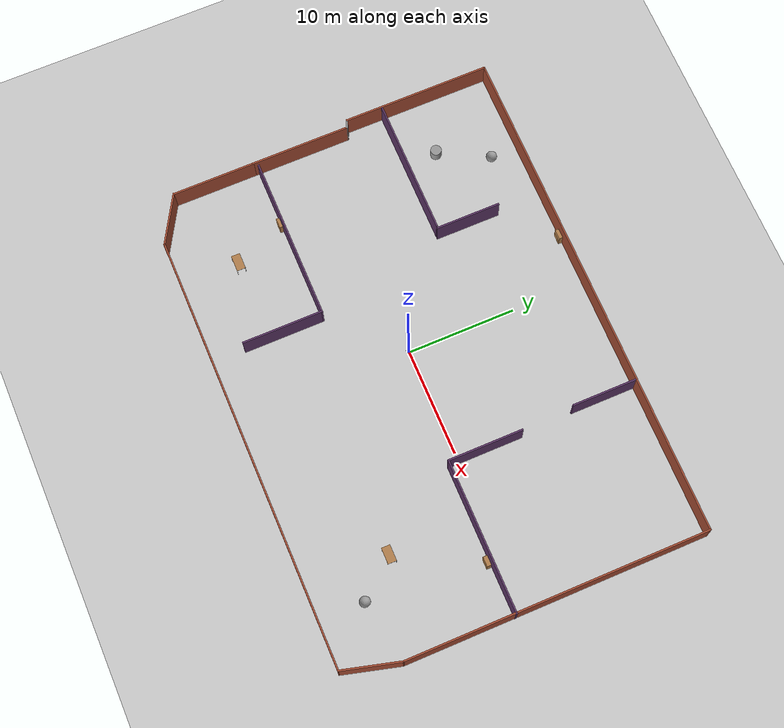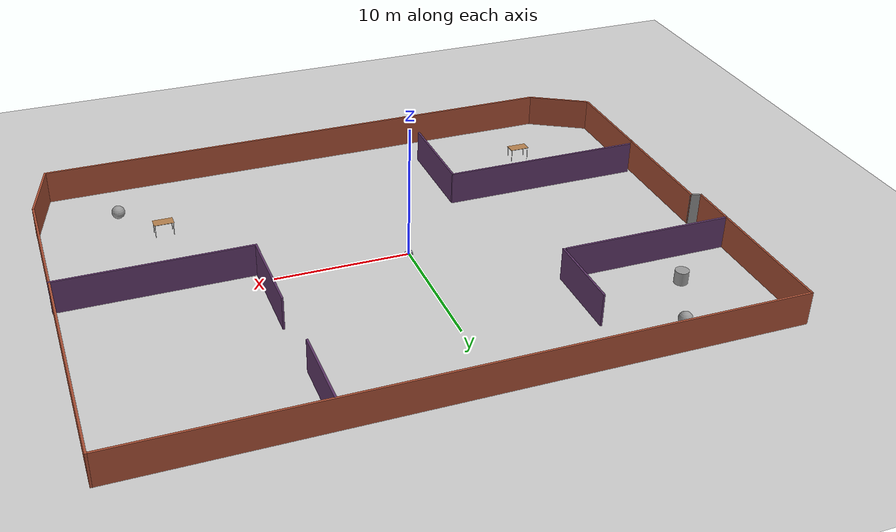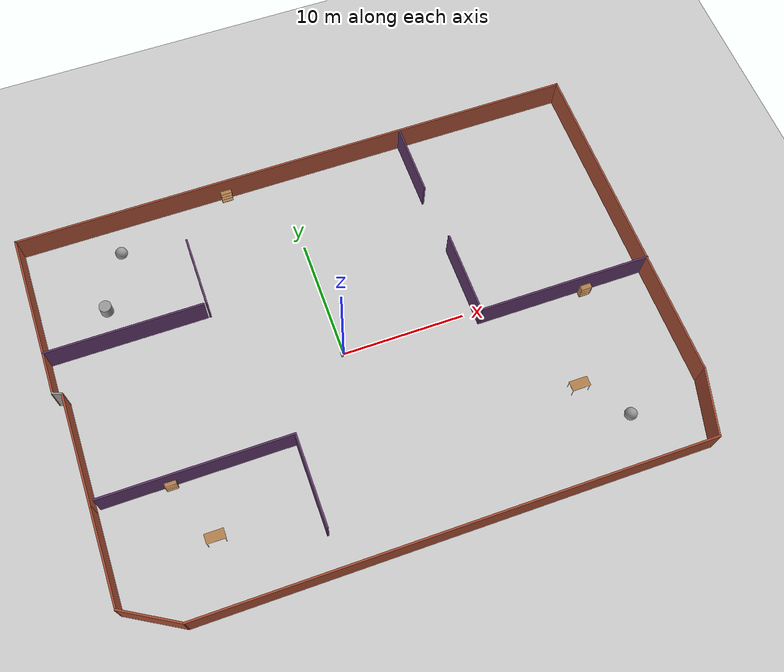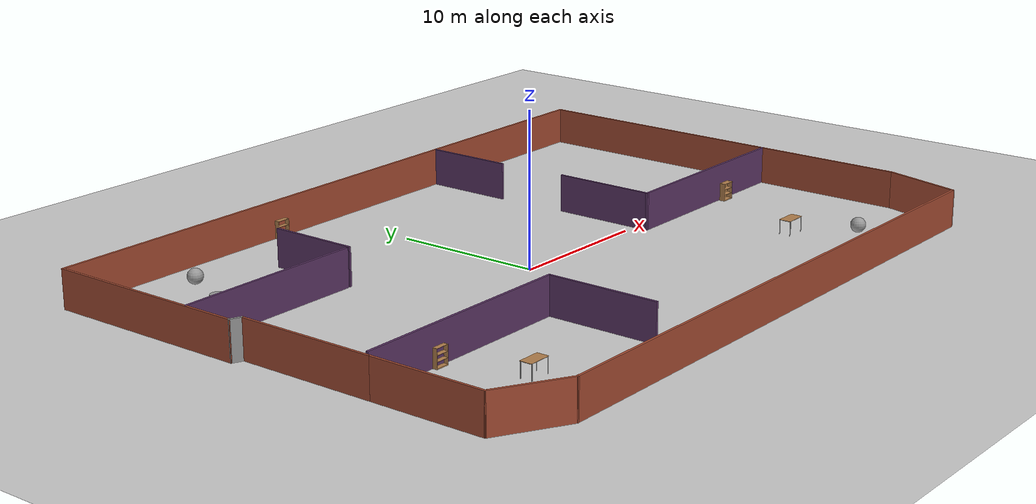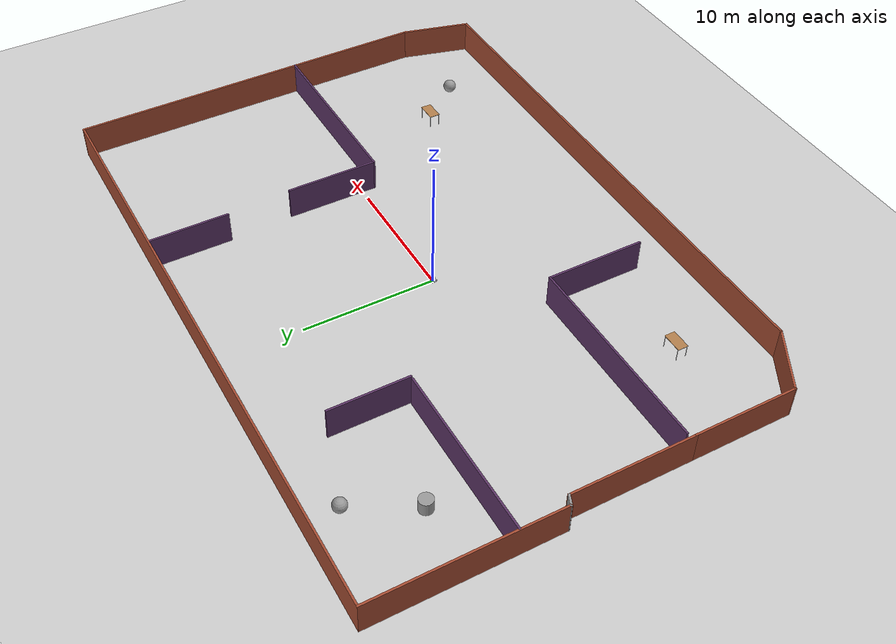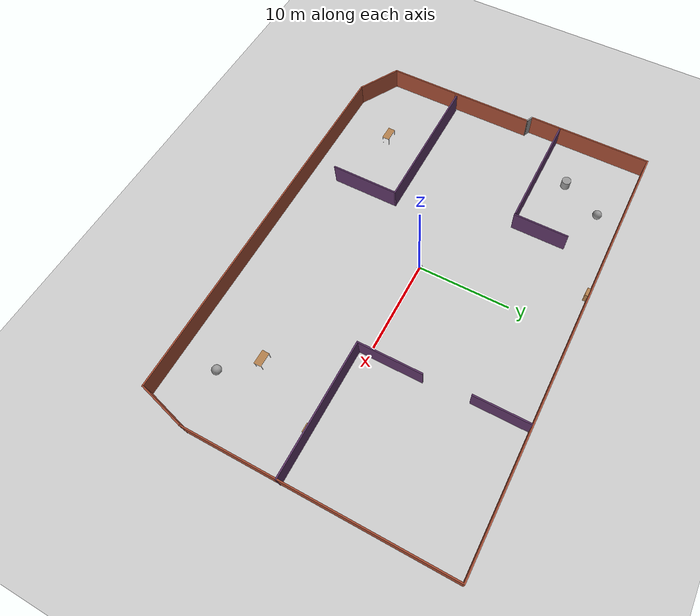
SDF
<sdf version="1.7">
 <world name="default">
  <light name="sun" type="directional">
   <pose>0 0 10 0 -0 0</pose>
   <diffuse>0.8 0.8 0.8 1</diffuse>
   <specular>0.2 0.2 0.2 1</specular>
   <attenuation>
    <range>1000</range>
    <constant>0.9</constant>
    <linear>0.01</linear>
    <quadratic>0.001</quadratic>
   </attenuation>
   <direction>-0.5 0.1 -0.9</direction>
   <spot><inner_angle>0</inner_angle><outer_angle>0</outer_angle><falloff>0</falloff></spot>
  </light>
  <model name="ground_plane">
   <static>1</static>
   <link name="link">
    <collision name="collision">
     <geometry><plane><normal>0 0 1</normal><size>100 100</size></plane></geometry>
     <surface>
      <contact><collide_bitmask>65535</collide_bitmask></contact>
      <friction><ode><mu>100</mu><mu2>50</mu2></ode></friction>
     </surface>
    </collision>
    <visual name="visual">
     <cast_shadows>0</cast_shadows>
     <geometry><plane><normal>0 0 1</normal><size>100 100</size></plane></geometry>
     <material>
      <script><uri>file://media/materials/scripts/gazebo.material</uri><name>Gazebo/Grey</name></script>
     </material>
    </visual>
   </link>
  </model>
  <gravity>0 0 -9.8</gravity>
  <magnetic_field>6e-06 2.3e-05 -4.2e-05</magnetic_field>
  <atmosphere type="adiabatic"/>
  <physics type="ode">
   <max_step_size>0.001</max_step_size>
   <real_time_factor>1</real_time_factor>
   <real_time_update_rate>1000</real_time_update_rate>
  </physics>
  <scene><ambient>0.4 0.4 0.4 1</ambient><background>0.7 0.7 0.7 1</background><shadows>1</shadows></scene>
  <spherical_coordinates>
   <surface_model>EARTH_WGS84</surface_model>
   <latitude_deg>0</latitude_deg>
   <longitude_deg>0</longitude_deg>
   <elevation>0</elevation>
   <heading_deg>0</heading_deg>
  </spherical_coordinates>
  <model name="rmp01_bot">
   <link name="base_link">
    <inertial>
     <pose>-0.010386 2.4e-05 0.120697 0 -0 0</pose>
     <mass>14.3585</mass>
     <inertia>
      <ixx>0.149241</ixx>
      <ixy>-1.58634e-05</ixy>
      <ixz>0.0173055</ixz>
      <iyy>0.348864</iyy>
      <iyz>-2.11879e-05</iyz>
      <izz>0.391853</izz>
     </inertia>
    </inertial>
    <collision name="base_link_collision">
     <geometry>
      <mesh>
       <scale>0.001 0.001 0.001</scale>
       <uri>/home/startech/catkin_ws/src/rmp01_bot_description/meshes/base_link.stl</uri>
      </mesh>
     </geometry>
     <surface><friction><ode><mu>0.2</mu><mu2>0.2</mu2></ode></friction></surface>
    </collision>
    <collision name="base_link_fixed_joint_lump__lidar_1_collision_1">
     <geometry>
      <mesh>
       <scale>0.001 0.001 0.001</scale>
       <uri>/home/startech/catkin_ws/src/rmp01_bot_description/meshes/lidar_1.stl</uri>
      </mesh>
     </geometry>
     <surface><friction><ode><mu>0.2</mu><mu2>0.2</mu2></ode></friction></surface>
    </collision>
    <visual name="base_link_visual">
     <geometry>
      <mesh>
       <scale>0.001 0.001 0.001</scale>
       <uri>/home/startech/catkin_ws/src/rmp01_bot_description/meshes/base_link.stl</uri>
      </mesh>
     </geometry>
     <material>
      <script><name>Gazebo/Silver</name><uri>file://media/materials/scripts/gazebo.material</uri></script>
     </material>
    </visual>
    <visual name="base_link_fixed_joint_lump__lidar_1_visual_1">
     <geometry>
      <mesh>
       <scale>0.001 0.001 0.001</scale>
       <uri>/home/startech/catkin_ws/src/rmp01_bot_description/meshes/lidar_1.stl</uri>
      </mesh>
     </geometry>
     <material>
      <script><name>Gazebo/Silver</name><uri>file://media/materials/scripts/gazebo.material</uri></script>
     </material>
    </visual>
    <sensor name="camera1" type="camera">
     <update_rate>30</update_rate>
     <camera name="head">
      <horizontal_fov>1.39626</horizontal_fov>
      <image><width>800</width><height>800</height><format>R8G8B8</format></image>
      <clip><near>0.02</near><far>300</far></clip>
      <noise><type>gaussian</type><mean>0</mean><stddev>0.007</stddev></noise>
     </camera>
     <plugin name="camera_controller" filename="libgazebo_ros_camera.so">
      <alwaysOn>1</alwaysOn>
      <updateRate>0.0</updateRate>
      <cameraName>rrbot/camera1</cameraName>
      <imageTopicName>image_raw</imageTopicName>
      <cameraInfoTopicName>camera_info</cameraInfoTopicName>
      <frameName>camera_link</frameName>
      <hackBaseline>0.07</hackBaseline>
      <distortionK1>0.0</distortionK1>
      <distortionK2>0.0</distortionK2>
      <distortionK3>0.0</distortionK3>
      <distortionT1>0.0</distortionT1>
      <distortionT2>0.0</distortionT2>
      <robotNamespace>/</robotNamespace>
     </plugin>
     <pose>0.1 0 0.23 0 -0 0</pose>
    </sensor>
    <self_collide>1</self_collide>
    <sensor name="head_hokuyo_sensor" type="ray">
     <visualize>0</visualize>
     <update_rate>40</update_rate>
     <ray>
      <scan>
       <horizontal>
        <samples>720</samples>
        <resolution>1</resolution>
        <min_angle>-3.14</min_angle>
        <max_angle>3.14</max_angle>
       </horizontal>
       <vertical><samples>1</samples><min_angle>0</min_angle><max_angle>0</max_angle></vertical>
      </scan>
      <range><min>0.1</min><max>30</max><resolution>0.01</resolution></range>
      <noise><type>gaussian</type><mean>0</mean><stddev>0.01</stddev></noise>
     </ray>
     <plugin name="gazebo_ros_head_hokuyo_controller" filename="libgazebo_ros_laser.so">
      <topicName>/scan</topicName>
      <frameName>lidar_1</frameName>
      <robotNamespace>/</robotNamespace>
     </plugin>
     <pose>-0.1 0 0.23 0 -0 0</pose>
    </sensor>
   </link>
   <joint name="back_left_wheel_joint" type="revolute">
    <pose relative_to="base_link">-0.16 0.17 0.08 0 -0 0</pose>
    <parent>base_link</parent>
    <child>back_left_wheel_1</child>
    <axis>
     <xyz>0 1 0</xyz>
     <limit><lower>-1e+16</lower><upper>1e+16</upper></limit>
     <dynamics><spring_reference>0</spring_reference><spring_stiffness>0</spring_stiffness></dynamics>
    </axis>
   </joint>
   <link name="back_left_wheel_1">
    <pose relative_to="back_left_wheel_joint">0 0 0 0 -0 0</pose>
    <inertial>
     <pose>-0 0.025 0 0 -0 0</pose>
     <mass>0.897123</mass>
     <inertia>
      <ixx>0.001664</ixx>
      <ixy>0</ixy>
      <ixz>0</ixz>
      <iyy>0.002957</iyy>
      <iyz>0</iyz>
      <izz>0.001664</izz>
     </inertia>
    </inertial>
    <collision name="back_left_wheel_1_collision">
     <pose>0.16 -0.17 -0.08 0 -0 0</pose>
     <geometry>
      <mesh>
       <scale>0.001 0.001 0.001</scale>
       <uri>/home/startech/catkin_ws/src/rmp01_bot_description/meshes/back_left_wheel_1.stl</uri>
      </mesh>
     </geometry>
     <surface><friction><ode><mu>0.2</mu><mu2>0.2</mu2></ode></friction></surface>
    </collision>
    <visual name="back_left_wheel_1_visual">
     <pose>0.16 -0.17 -0.08 0 -0 0</pose>
     <geometry>
      <mesh>
       <scale>0.001 0.001 0.001</scale>
       <uri>/home/startech/catkin_ws/src/rmp01_bot_description/meshes/back_left_wheel_1.stl</uri>
      </mesh>
     </geometry>
     <material>
      <script><name>Gazebo/Silver</name><uri>file://media/materials/scripts/gazebo.material</uri></script>
     </material>
    </visual>
    <self_collide>1</self_collide>
   </link>
   <joint name="back_right_wheel_joint" type="revolute">
    <pose relative_to="base_link">-0.16 -0.17 0.08 0 -0 0</pose>
    <parent>base_link</parent>
    <child>back_right_wheel_1</child>
    <axis>
     <xyz>0 -1 0</xyz>
     <limit><lower>-1e+16</lower><upper>1e+16</upper></limit>
     <dynamics><spring_reference>0</spring_reference><spring_stiffness>0</spring_stiffness></dynamics>
    </axis>
   </joint>
   <link name="back_right_wheel_1">
    <pose relative_to="back_right_wheel_joint">0 0 0 0 -0 0</pose>
    <inertial>
     <pose>-0 -0.025 0 0 -0 0</pose>
     <mass>0.897123</mass>
     <inertia>
      <ixx>0.001664</ixx>
      <ixy>0</ixy>
      <ixz>0</ixz>
      <iyy>0.002957</iyy>
      <iyz>0</iyz>
      <izz>0.001664</izz>
     </inertia>
    </inertial>
    <collision name="back_right_wheel_1_collision">
     <pose>0.16 0.17 -0.08 0 -0 0</pose>
     <geometry>
      <mesh>
       <scale>0.001 0.001 0.001</scale>
       <uri>/home/startech/catkin_ws/src/rmp01_bot_description/meshes/back_right_wheel_1.stl</uri>
      </mesh>
     </geometry>
     <surface><friction><ode><mu>0.2</mu><mu2>0.2</mu2></ode></friction></surface>
    </collision>
    <visual name="back_right_wheel_1_visual">
     <pose>0.16 0.17 -0.08 0 -0 0</pose>
     <geometry>
      <mesh>
       <scale>0.001 0.001 0.001</scale>
       <uri>/home/startech/catkin_ws/src/rmp01_bot_description/meshes/back_right_wheel_1.stl</uri>
      </mesh>
     </geometry>
     <material>
      <script><name>Gazebo/Silver</name><uri>file://media/materials/scripts/gazebo.material</uri></script>
     </material>
    </visual>
    <self_collide>1</self_collide>
   </link>
   <joint name="front_left_wheel_joint" type="revolute">
    <pose relative_to="base_link">0.16 0.17 0.08 0 -0 0</pose>
    <parent>base_link</parent>
    <child>front_left_wheel_1</child>
    <axis>
     <xyz>0 1 0</xyz>
     <limit><lower>-1e+16</lower><upper>1e+16</upper></limit>
     <dynamics><spring_reference>0</spring_reference><spring_stiffness>0</spring_stiffness></dynamics>
    </axis>
   </joint>
   <link name="front_left_wheel_1">
    <pose relative_to="front_left_wheel_joint">0 0 0 0 -0 0</pose>
    <inertial>
     <pose>0 0.025 0 0 -0 0</pose>
     <mass>0.897123</mass>
     <inertia>
      <ixx>0.001664</ixx>
      <ixy>0</ixy>
      <ixz>0</ixz>
      <iyy>0.002957</iyy>
      <iyz>0</iyz>
      <izz>0.001664</izz>
     </inertia>
    </inertial>
    <collision name="front_left_wheel_1_collision">
     <pose>-0.16 -0.17 -0.08 0 -0 0</pose>
     <geometry>
      <mesh>
       <scale>0.001 0.001 0.001</scale>
       <uri>/home/startech/catkin_ws/src/rmp01_bot_description/meshes/front_left_wheel_1.stl</uri>
      </mesh>
     </geometry>
     <surface><friction><ode><mu>0.2</mu><mu2>0.2</mu2></ode></friction></surface>
    </collision>
    <visual name="front_left_wheel_1_visual">
     <pose>-0.16 -0.17 -0.08 0 -0 0</pose>
     <geometry>
      <mesh>
       <scale>0.001 0.001 0.001</scale>
       <uri>/home/startech/catkin_ws/src/rmp01_bot_description/meshes/front_left_wheel_1.stl</uri>
      </mesh>
     </geometry>
     <material>
      <script><name>Gazebo/Silver</name><uri>file://media/materials/scripts/gazebo.material</uri></script>
     </material>
    </visual>
    <self_collide>1</self_collide>
   </link>
   <joint name="front_right_wheel_joint" type="revolute">
    <pose relative_to="base_link">0.16 -0.17 0.08 0 -0 0</pose>
    <parent>base_link</parent>
    <child>front_right_wheel_1</child>
    <axis>
     <xyz>0 -1 0</xyz>
     <limit><lower>-1e+16</lower><upper>1e+16</upper></limit>
     <dynamics><spring_reference>0</spring_reference><spring_stiffness>0</spring_stiffness></dynamics>
    </axis>
   </joint>
   <link name="front_right_wheel_1">
    <pose relative_to="front_right_wheel_joint">0 0 0 0 -0 0</pose>
    <inertial>
     <pose>0 -0.025 0 0 -0 0</pose>
     <mass>0.897123</mass>
     <inertia>
      <ixx>0.001664</ixx>
      <ixy>0</ixy>
      <ixz>0</ixz>
      <iyy>0.002957</iyy>
      <iyz>0</iyz>
      <izz>0.001664</izz>
     </inertia>
    </inertial>
    <collision name="front_right_wheel_1_collision">
     <pose>-0.16 0.17 -0.08 0 -0 0</pose>
     <geometry>
      <mesh>
       <scale>0.001 0.001 0.001</scale>
       <uri>/home/startech/catkin_ws/src/rmp01_bot_description/meshes/front_right_wheel_1.stl</uri>
      </mesh>
     </geometry>
     <surface><friction><ode><mu>0.2</mu><mu2>0.2</mu2></ode></friction></surface>
    </collision>
    <visual name="front_right_wheel_1_visual">
     <pose>-0.16 0.17 -0.08 0 -0 0</pose>
     <geometry>
      <mesh>
       <scale>0.001 0.001 0.001</scale>
       <uri>/home/startech/catkin_ws/src/rmp01_bot_description/meshes/front_right_wheel_1.stl</uri>
      </mesh>
     </geometry>
     <material>
      <script><name>Gazebo/Silver</name><uri>file://media/materials/scripts/gazebo.material</uri></script>
     </material>
    </visual>
    <self_collide>1</self_collide>
   </link>
   <plugin name="control" filename="libgazebo_ros_control.so"><robotNamespace>/</robotNamespace></plugin>
   <static>0</static>
   <plugin name="skid_steer_drive_controller" filename="libgazebo_ros_skid_steer_drive.so">
    <updateRate>100.0</updateRate>
    <robotNamespace>/</robotNamespace>
    <leftFrontJoint>front_left_wheel_joint</leftFrontJoint>
    <rightFrontJoint>front_right_wheel_joint</rightFrontJoint>
    <leftRearJoint>back_left_wheel_joint</leftRearJoint>
    <rightRearJoint>back_right_wheel_joint</rightRearJoint>
    <wheelSeparation>0.4</wheelSeparation>
    <wheelDiameter>0.215</wheelDiameter>
    <robotBaseFrame>base_link</robotBaseFrame>
    <torque>20</torque>
    <topicName>cmd_vel</topicName>
    <broadcastTF>1</broadcastTF>
   </plugin>
   <pose>-0.006529 -0.005775 -5.2e-05 -1e-06 0.000233 0.004419</pose>
  </model>
  <model name="big_world">
   <pose>1.56726 0.207996 0 0 -0 0</pose>
   <link name="Wall_1">
    <collision name="Wall_1_Collision">
     <geometry><box><size>9.25 0.15 2.5</size></box></geometry>
     <pose>0 0 1.25 0 -0 0</pose>
    </collision>
    <visual name="Wall_1_Visual">
     <pose>0 0 1.25 0 -0 0</pose>
     <geometry><box><size>9.25 0.15 2.5</size></box></geometry>
     <material>
      <script><uri>file://media/materials/scripts/gazebo.material</uri><name>Gazebo/Bricks</name></script>
      <ambient>1 1 1 1</ambient>
     </material>
     <meta><layer>0</layer></meta>
    </visual>
    <pose>-22.7662 -1.92013 0 0 -0 -1.5708</pose>
   </link>
   <link name="Wall_11">
    <collision name="Wall_11_Collision">
     <geometry><box><size>12.75 0.15 2.5</size></box></geometry>
     <pose>0 0 1.25 0 -0 0</pose>
    </collision>
    <visual name="Wall_11_Visual">
     <pose>0 0 1.25 0 -0 0</pose>
     <geometry><box><size>12.75 0.15 2.5</size></box></geometry>
     <material>
      <script><uri>file://media/materials/scripts/gazebo.material</uri><name>Gazebo/Grey</name></script>
      <ambient>0.360784 0.207843 0.4 1</ambient>
     </material>
     <meta><layer>0</layer></meta>
    </visual>
    <pose>-17.0789 6.34576 0 0 -0 0</pose>
   </link>
   <link name="Wall_14">
    <collision name="Wall_14_Collision">
     <geometry><box><size>6 0.15 2.5</size></box></geometry>
     <pose>0 0 1.25 0 -0 0</pose>
    </collision>
    <visual name="Wall_14_Visual">
     <pose>0 0 1.25 0 -0 0</pose>
     <geometry><box><size>6 0.15 2.5</size></box></geometry>
     <material>
      <script><uri>file://media/materials/scripts/gazebo.material</uri><name>Gazebo/Grey</name></script>
      <ambient>0.360784 0.207843 0.4 1</ambient>
     </material>
     <meta><layer>0</layer></meta>
    </visual>
    <pose>-10.5269 9.27254 0 0 -0 1.5708</pose>
   </link>
   <link name="Wall_16">
    <collision name="Wall_16_Collision">
     <geometry><box><size>14.25 0.15 2.5</size></box></geometry>
     <pose>0 0 1.25 0 -0 0</pose>
    </collision>
    <visual name="Wall_16_Visual">
     <pose>0 0 1.25 0 -0 0</pose>
     <geometry><box><size>14.25 0.15 2.5</size></box></geometry>
     <material>
      <script><uri>file://media/materials/scripts/gazebo.material</uri><name>Gazebo/Grey</name></script>
      <ambient>0.360784 0.207843 0.4 1</ambient>
     </material>
     <meta><layer>0</layer></meta>
    </visual>
    <pose>16.4051 -1.22608 0 0 -0 3.14159</pose>
   </link>
   <link name="Wall_17">
    <collision name="Wall_17_Collision">
     <geometry><box><size>7 0.15 2.5</size></box></geometry>
     <pose>0 0 1.25 0 -0 0</pose>
    </collision>
    <visual name="Wall_17_Visual">
     <pose>0 0 1.25 0 -0 0</pose>
     <geometry><box><size>7 0.15 2.5</size></box></geometry>
     <material>
      <script><uri>file://media/materials/scripts/gazebo.material</uri><name>Gazebo/Grey</name></script>
      <ambient>0.360784 0.207843 0.4 1</ambient>
     </material>
     <meta><layer>0</layer></meta>
    </visual>
    <pose>9.35512 2.19892 0 0 -0 1.5708</pose>
   </link>
   <link name="Wall_19">
    <collision name="Wall_19_Collision">
     <geometry><box><size>6 0.15 2.5</size></box></geometry>
     <pose>0 0 1.25 0 -0 0</pose>
    </collision>
    <visual name="Wall_19_Visual">
     <pose>0 0 1.25 0 -0 0</pose>
     <geometry><box><size>6 0.15 2.5</size></box></geometry>
     <material>
      <script><uri>file://media/materials/scripts/gazebo.material</uri><name>Gazebo/Grey</name></script>
      <ambient>0.360784 0.207843 0.4 1</ambient>
     </material>
     <meta><layer>0</layer></meta>
    </visual>
    <pose>9.08103 13.4963 0 0 -0 -1.5708</pose>
   </link>
   <link name="Wall_2">
    <collision name="Wall_2_Collision">
     <geometry><box><size>7.75 0.15 2.5</size></box></geometry>
     <pose>0 0 1.25 0 -0 0</pose>
    </collision>
    <visual name="Wall_2_Visual">
     <pose>0 0 1.25 0 -0 0</pose>
     <geometry><box><size>7.75 0.15 2.5</size></box></geometry>
     <material>
      <script><uri>file://media/materials/scripts/gazebo.material</uri><name>Gazebo/Bricks</name></script>
      <ambient>1 1 1 1</ambient>
     </material>
     <meta><layer>0</layer></meta>
    </visual>
    <pose>-22.7662 -10.2701 0 0 -0 -1.5708</pose>
   </link>
   <link name="Wall_21">
    <collision name="Wall_21_Collision">
     <geometry><box><size>15.25 0.15 2.5</size></box></geometry>
     <pose>0 0 1.25 0 -0 0</pose>
    </collision>
    <visual name="Wall_21_Visual">
     <pose>0 0 1.25 0 -0 0</pose>
     <geometry><box><size>15.25 0.15 2.5</size></box></geometry>
     <material>
      <script><uri>file://media/materials/scripts/gazebo.material</uri><name>Gazebo/Grey</name></script>
      <ambient>0.360784 0.207843 0.4 1</ambient>
     </material>
     <meta><layer>0</layer></meta>
    </visual>
    <pose>-14.8213 -6.06483 0 0 -0 7e-06</pose>
   </link>
   <link name="Wall_22">
    <collision name="Wall_22_Collision">
     <geometry><box><size>7.5 0.15 2.5</size></box></geometry>
     <pose>0 0 1.25 0 -0 0</pose>
    </collision>
    <visual name="Wall_22_Visual">
     <pose>0 0 1.25 0 -0 0</pose>
     <geometry><box><size>7.5 0.15 2.5</size></box></geometry>
     <material>
      <script><uri>file://media/materials/scripts/gazebo.material</uri><name>Gazebo/Grey</name></script>
      <ambient>0.360784 0.207843 0.4 1</ambient>
     </material>
     <meta><layer>0</layer></meta>
    </visual>
    <pose>-7.27147 -9.73978 0 0 -0 -1.5708</pose>
   </link>
   <link name="Wall_3">
    <collision name="Wall_3_Collision">
     <geometry><box><size>5 0.15 2.5</size></box></geometry>
     <pose>0 0 1.25 0 -0 0</pose>
    </collision>
    <visual name="Wall_3_Visual">
     <pose>0 0 1.25 0 -0 0</pose>
     <geometry><box><size>5 0.15 2.5</size></box></geometry>
     <material>
      <script><uri>file://media/materials/scripts/gazebo.material</uri><name>Gazebo/Bricks</name></script>
      <ambient>1 1 1 1</ambient>
     </material>
     <meta><layer>0</layer></meta>
    </visual>
    <pose>-20.6661 -15.2826 0 0 -0 -0.523599</pose>
   </link>
   <link name="Wall_4">
    <collision name="Wall_4_Collision">
     <geometry><box><size>40.75 0.15 2.5</size></box></geometry>
     <pose>0 0 1.25 0 -0 0</pose>
    </collision>
    <visual name="Wall_4_Visual">
     <pose>0 0 1.25 0 -0 0</pose>
     <geometry><box><size>40.75 0.15 2.5</size></box></geometry>
     <material>
      <script><uri>file://media/materials/scripts/gazebo.material</uri><name>Gazebo/Bricks</name></script>
      <ambient>1 1 1 1</ambient>
     </material>
     <meta><layer>0</layer></meta>
    </visual>
    <pose>1.73405 -16.4951 0 0 -0 0</pose>
   </link>
   <link name="Wall_5">
    <collision name="Wall_5_Collision">
     <geometry><box><size>5.5 0.15 2.5</size></box></geometry>
     <pose>0 0 1.25 0 -0 0</pose>
    </collision>
    <visual name="Wall_5_Visual">
     <pose>0 0 1.25 0 -0 0</pose>
     <geometry><box><size>5.5 0.15 2.5</size></box></geometry>
     <material>
      <script><uri>file://media/materials/scripts/gazebo.material</uri><name>Gazebo/Bricks</name></script>
      <ambient>1 1 1 1</ambient>
     </material>
     <meta><layer>0</layer></meta>
    </visual>
    <pose>22.7264 -13.9113 0 0 -0 1.309</pose>
   </link>
   <link name="Wall_6">
    <collision name="Wall_6_Collision">
     <geometry><box><size>28 0.15 2.5</size></box></geometry>
     <pose>0 0 1.25 0 -0 0</pose>
    </collision>
    <visual name="Wall_6_Visual">
     <pose>0 0 1.25 0 -0 0</pose>
     <geometry><box><size>28 0.15 2.5</size></box></geometry>
     <material>
      <script><uri>file://media/materials/scripts/gazebo.material</uri><name>Gazebo/Bricks</name></script>
      <ambient>1 1 1 1</ambient>
     </material>
     <meta><layer>0</layer></meta>
    </visual>
    <pose>23.4187 2.59758 0 0 -0 1.5708</pose>
   </link>
   <link name="Wall_7">
    <collision name="Wall_7_Collision">
     <geometry><box><size>47 0.15 2.5</size></box></geometry>
     <pose>0 0 1.25 0 -0 0</pose>
    </collision>
    <visual name="Wall_7_Visual">
     <pose>0 0 1.25 0 -0 0</pose>
     <geometry><box><size>47 0.15 2.5</size></box></geometry>
     <material>
      <script><uri>file://media/materials/scripts/gazebo.material</uri><name>Gazebo/Bricks</name></script>
      <ambient>1 1 1 1</ambient>
     </material>
     <meta><layer>0</layer></meta>
    </visual>
    <pose>-0.006265 16.5226 0 0 -0 3.14159</pose>
   </link>
   <link name="Wall_8">
    <collision name="Wall_8_Collision">
     <geometry><box><size>13.75 0.15 2.5</size></box></geometry>
     <pose>0 0 1.25 0 -0 0</pose>
    </collision>
    <visual name="Wall_8_Visual">
     <pose>0 0 1.25 0 -0 0</pose>
     <geometry><box><size>13.75 0.15 2.5</size></box></geometry>
     <material>
      <script><uri>file://media/materials/scripts/gazebo.material</uri><name>Gazebo/Bricks</name></script>
      <ambient>1 1 1 1</ambient>
     </material>
     <meta><layer>0</layer></meta>
    </visual>
    <pose>-23.4313 9.72258 0 0 -0 -1.5708</pose>
   </link>
   <link name="Wall_9">
    <collision name="Wall_9_Collision">
     <geometry><box><size>0.876654 0.15 2.5</size></box></geometry>
     <pose>0 0 1.25 0 -0 0</pose>
    </collision>
    <visual name="Wall_9_Visual">
     <pose>0 0 1.25 0 -0 0</pose>
     <geometry><box><size>0.876654 0.15 2.5</size></box></geometry>
     <material>
      <script><uri>file://media/materials/scripts/gazebo.material</uri><name>Gazebo/Grey</name></script>
      <ambient>1 1 1 1</ambient>
     </material>
     <meta><layer>0</layer></meta>
    </visual>
    <pose>-23.0987 2.77623 0 0 -0 -0.414584</pose>
   </link>
   <static>1</static>
  </model>
  <model name="bookshelf">
   <static>1</static>
   <link name="link">
    <inertial><mass>1</mass></inertial>
    <collision name="back">
     <pose>0 0.005 0.6 0 -0 0</pose>
     <geometry><box><size>0.9 0.01 1.2</size></box></geometry>
    </collision>
    <visual name="visual1">
     <pose>0 0.005 0.6 0 -0 0</pose>
     <geometry><box><size>0.9 0.01 1.2</size></box></geometry>
     <material>
      <script><uri>file://media/materials/scripts/gazebo.material</uri><name>Gazebo/Wood</name></script>
     </material>
    </visual>
    <collision name="left_side">
     <pose>0.45 -0.195 0.6 0 -0 0</pose>
     <geometry><box><size>0.02 0.4 1.2</size></box></geometry>
    </collision>
    <visual name="visual2">
     <pose>0.45 -0.195 0.6 0 -0 0</pose>
     <geometry><box><size>0.02 0.4 1.2</size></box></geometry>
     <material>
      <script><uri>file://media/materials/scripts/gazebo.material</uri><name>Gazebo/Wood</name></script>
     </material>
    </visual>
    <collision name="right_side">
     <pose>-0.45 -0.195 0.6 0 -0 0</pose>
     <geometry><box><size>0.02 0.4 1.2</size></box></geometry>
    </collision>
    <visual name="visual3">
     <pose>-0.45 -0.195 0.6 0 -0 0</pose>
     <geometry><box><size>0.02 0.4 1.2</size></box></geometry>
     <material>
      <script><uri>file://media/materials/scripts/gazebo.material</uri><name>Gazebo/Wood</name></script>
     </material>
    </visual>
    <collision name="bottom">
     <pose>0 -0.195 0.03 0 -0 0</pose>
     <geometry><box><size>0.88 0.4 0.06</size></box></geometry>
    </collision>
    <visual name="visual4">
     <pose>0 -0.195 0.03 0 -0 0</pose>
     <geometry><box><size>0.88 0.4 0.06</size></box></geometry>
     <material>
      <script><uri>file://media/materials/scripts/gazebo.material</uri><name>Gazebo/Wood</name></script>
     </material>
    </visual>
    <collision name="top">
     <pose>0 -0.195 1.19 0 -0 0</pose>
     <geometry><box><size>0.88 0.4 0.02</size></box></geometry>
    </collision>
    <visual name="visual5">
     <pose>0 -0.195 1.19 0 -0 0</pose>
     <geometry><box><size>0.88 0.4 0.02</size></box></geometry>
     <material>
      <script><uri>file://media/materials/scripts/gazebo.material</uri><name>Gazebo/Wood</name></script>
     </material>
    </visual>
    <collision name="low_shelf">
     <pose>0 -0.195 0.43 0 -0 0</pose>
     <geometry><box><size>0.88 0.4 0.02</size></box></geometry>
    </collision>
    <visual name="visual6">
     <pose>0 -0.195 0.43 0 -0 0</pose>
     <geometry><box><size>0.88 0.4 0.02</size></box></geometry>
     <material>
      <script><uri>file://media/materials/scripts/gazebo.material</uri><name>Gazebo/Wood</name></script>
     </material>
    </visual>
    <collision name="high_shelf">
     <pose>0 -0.195 0.8 0 -0 0</pose>
     <geometry><box><size>0.88 0.4 0.02</size></box></geometry>
    </collision>
    <visual name="visual7">
     <pose>0 -0.195 0.8 0 -0 0</pose>
     <geometry><box><size>0.88 0.4 0.02</size></box></geometry>
     <material>
      <script><uri>file://media/materials/scripts/gazebo.material</uri><name>Gazebo/Wood</name></script>
     </material>
    </visual>
   </link>
   <pose>-4.65925 16.7228 0 0 -0 0</pose>
  </model>
  <model name="bookshelf_0">
   <static>1</static>
   <link name="link">
    <inertial><mass>1</mass></inertial>
    <collision name="back">
     <pose>0 0.005 0.6 0 -0 0</pose>
     <geometry><box><size>0.9 0.01 1.2</size></box></geometry>
    </collision>
    <visual name="visual1">
     <pose>0 0.005 0.6 0 -0 0</pose>
     <geometry><box><size>0.9 0.01 1.2</size></box></geometry>
     <material>
      <script><uri>file://media/materials/scripts/gazebo.material</uri><name>Gazebo/Wood</name></script>
     </material>
    </visual>
    <collision name="left_side">
     <pose>0.45 -0.195 0.6 0 -0 0</pose>
     <geometry><box><size>0.02 0.4 1.2</size></box></geometry>
    </collision>
    <visual name="visual2">
     <pose>0.45 -0.195 0.6 0 -0 0</pose>
     <geometry><box><size>0.02 0.4 1.2</size></box></geometry>
     <material>
      <script><uri>file://media/materials/scripts/gazebo.material</uri><name>Gazebo/Wood</name></script>
     </material>
    </visual>
    <collision name="right_side">
     <pose>-0.45 -0.195 0.6 0 -0 0</pose>
     <geometry><box><size>0.02 0.4 1.2</size></box></geometry>
    </collision>
    <visual name="visual3">
     <pose>-0.45 -0.195 0.6 0 -0 0</pose>
     <geometry><box><size>0.02 0.4 1.2</size></box></geometry>
     <material>
      <script><uri>file://media/materials/scripts/gazebo.material</uri><name>Gazebo/Wood</name></script>
     </material>
    </visual>
    <collision name="bottom">
     <pose>0 -0.195 0.03 0 -0 0</pose>
     <geometry><box><size>0.88 0.4 0.06</size></box></geometry>
    </collision>
    <visual name="visual4">
     <pose>0 -0.195 0.03 0 -0 0</pose>
     <geometry><box><size>0.88 0.4 0.06</size></box></geometry>
     <material>
      <script><uri>file://media/materials/scripts/gazebo.material</uri><name>Gazebo/Wood</name></script>
     </material>
    </visual>
    <collision name="top">
     <pose>0 -0.195 1.19 0 -0 0</pose>
     <geometry><box><size>0.88 0.4 0.02</size></box></geometry>
    </collision>
    <visual name="visual5">
     <pose>0 -0.195 1.19 0 -0 0</pose>
     <geometry><box><size>0.88 0.4 0.02</size></box></geometry>
     <material>
      <script><uri>file://media/materials/scripts/gazebo.material</uri><name>Gazebo/Wood</name></script>
     </material>
    </visual>
    <collision name="low_shelf">
     <pose>0 -0.195 0.43 0 -0 0</pose>
     <geometry><box><size>0.88 0.4 0.02</size></box></geometry>
    </collision>
    <visual name="visual6">
     <pose>0 -0.195 0.43 0 -0 0</pose>
     <geometry><box><size>0.88 0.4 0.02</size></box></geometry>
     <material>
      <script><uri>file://media/materials/scripts/gazebo.material</uri><name>Gazebo/Wood</name></script>
     </material>
    </visual>
    <collision name="high_shelf">
     <pose>0 -0.195 0.8 0 -0 0</pose>
     <geometry><box><size>0.88 0.4 0.02</size></box></geometry>
    </collision>
    <visual name="visual7">
     <pose>0 -0.195 0.8 0 -0 0</pose>
     <geometry><box><size>0.88 0.4 0.02</size></box></geometry>
     <material>
      <script><uri>file://media/materials/scripts/gazebo.material</uri><name>Gazebo/Wood</name></script>
     </material>
    </visual>
   </link>
   <pose>-15.4564 -5.83807 0 0 -0 0</pose>
  </model>
  <model name="bookshelf_1">
   <static>1</static>
   <link name="link">
    <inertial><mass>1</mass></inertial>
    <collision name="back">
     <pose>0 0.005 0.6 0 -0 0</pose>
     <geometry><box><size>0.9 0.01 1.2</size></box></geometry>
    </collision>
    <visual name="visual1">
     <pose>0 0.005 0.6 0 -0 0</pose>
     <geometry><box><size>0.9 0.01 1.2</size></box></geometry>
     <material>
      <script><uri>file://media/materials/scripts/gazebo.material</uri><name>Gazebo/Wood</name></script>
     </material>
    </visual>
    <collision name="left_side">
     <pose>0.45 -0.195 0.6 0 -0 0</pose>
     <geometry><box><size>0.02 0.4 1.2</size></box></geometry>
    </collision>
    <visual name="visual2">
     <pose>0.45 -0.195 0.6 0 -0 0</pose>
     <geometry><box><size>0.02 0.4 1.2</size></box></geometry>
     <material>
      <script><uri>file://media/materials/scripts/gazebo.material</uri><name>Gazebo/Wood</name></script>
     </material>
    </visual>
    <collision name="right_side">
     <pose>-0.45 -0.195 0.6 0 -0 0</pose>
     <geometry><box><size>0.02 0.4 1.2</size></box></geometry>
    </collision>
    <visual name="visual3">
     <pose>-0.45 -0.195 0.6 0 -0 0</pose>
     <geometry><box><size>0.02 0.4 1.2</size></box></geometry>
     <material>
      <script><uri>file://media/materials/scripts/gazebo.material</uri><name>Gazebo/Wood</name></script>
     </material>
    </visual>
    <collision name="bottom">
     <pose>0 -0.195 0.03 0 -0 0</pose>
     <geometry><box><size>0.88 0.4 0.06</size></box></geometry>
    </collision>
    <visual name="visual4">
     <pose>0 -0.195 0.03 0 -0 0</pose>
     <geometry><box><size>0.88 0.4 0.06</size></box></geometry>
     <material>
      <script><uri>file://media/materials/scripts/gazebo.material</uri><name>Gazebo/Wood</name></script>
     </material>
    </visual>
    <collision name="top">
     <pose>0 -0.195 1.19 0 -0 0</pose>
     <geometry><box><size>0.88 0.4 0.02</size></box></geometry>
    </collision>
    <visual name="visual5">
     <pose>0 -0.195 1.19 0 -0 0</pose>
     <geometry><box><size>0.88 0.4 0.02</size></box></geometry>
     <material>
      <script><uri>file://media/materials/scripts/gazebo.material</uri><name>Gazebo/Wood</name></script>
     </material>
    </visual>
    <collision name="low_shelf">
     <pose>0 -0.195 0.43 0 -0 0</pose>
     <geometry><box><size>0.88 0.4 0.02</size></box></geometry>
    </collision>
    <visual name="visual6">
     <pose>0 -0.195 0.43 0 -0 0</pose>
     <geometry><box><size>0.88 0.4 0.02</size></box></geometry>
     <material>
      <script><uri>file://media/materials/scripts/gazebo.material</uri><name>Gazebo/Wood</name></script>
     </material>
    </visual>
    <collision name="high_shelf">
     <pose>0 -0.195 0.8 0 -0 0</pose>
     <geometry><box><size>0.88 0.4 0.02</size></box></geometry>
    </collision>
    <visual name="visual7">
     <pose>0 -0.195 0.8 0 -0 0</pose>
     <geometry><box><size>0.88 0.4 0.02</size></box></geometry>
     <material>
      <script><uri>file://media/materials/scripts/gazebo.material</uri><name>Gazebo/Wood</name></script>
     </material>
    </visual>
   </link>
   <pose>19.8837 -1.15221 0 0 -0 0</pose>
  </model>
  <model name="table">
   <static>1</static>
   <link name="link">
    <collision name="surface">
     <pose>0 0 1 0 -0 0</pose>
     <geometry><box><size>1.5 0.8 0.03</size></box></geometry>
     <surface><friction><ode><mu>0.6</mu><mu2>0.6</mu2></ode></friction></surface>
    </collision>
    <visual name="visual1">
     <pose>0 0 1 0 -0 0</pose>
     <geometry><box><size>1.5 0.8 0.03</size></box></geometry>
     <material>
      <script><uri>file://media/materials/scripts/gazebo.material</uri><name>Gazebo/Wood</name></script>
     </material>
    </visual>
    <collision name="front_left_leg">
     <pose>0.68 0.38 0.5 0 -0 0</pose>
     <geometry><cylinder><radius>0.02</radius><length>1</length></cylinder></geometry>
    </collision>
    <visual name="front_left_leg">
     <pose>0.68 0.38 0.5 0 -0 0</pose>
     <geometry><cylinder><radius>0.02</radius><length>1</length></cylinder></geometry>
     <material>
      <script><uri>file://media/materials/scripts/gazebo.material</uri><name>Gazebo/Grey</name></script>
     </material>
    </visual>
    <collision name="front_right_leg">
     <pose>0.68 -0.38 0.5 0 -0 0</pose>
     <geometry><cylinder><radius>0.02</radius><length>1</length></cylinder></geometry>
    </collision>
    <visual name="front_right_leg">
     <pose>0.68 -0.38 0.5 0 -0 0</pose>
     <geometry><cylinder><radius>0.02</radius><length>1</length></cylinder></geometry>
     <material>
      <script><uri>file://media/materials/scripts/gazebo.material</uri><name>Gazebo/Grey</name></script>
     </material>
    </visual>
    <collision name="back_right_leg">
     <pose>-0.68 -0.38 0.5 0 -0 0</pose>
     <geometry><cylinder><radius>0.02</radius><length>1</length></cylinder></geometry>
    </collision>
    <visual name="back_right_leg">
     <pose>-0.68 -0.38 0.5 0 -0 0</pose>
     <geometry><cylinder><radius>0.02</radius><length>1</length></cylinder></geometry>
     <material>
      <script><uri>file://media/materials/scripts/gazebo.material</uri><name>Gazebo/Grey</name></script>
     </material>
    </visual>
    <collision name="back_left_leg">
     <pose>-0.68 0.38 0.5 0 -0 0</pose>
     <geometry><cylinder><radius>0.02</radius><length>1</length></cylinder></geometry>
    </collision>
    <visual name="back_left_leg">
     <pose>-0.68 0.38 0.5 0 -0 0</pose>
     <geometry><cylinder><radius>0.02</radius><length>1</length></cylinder></geometry>
     <material>
      <script><uri>file://media/materials/scripts/gazebo.material</uri><name>Gazebo/Grey</name></script>
     </material>
    </visual>
   </link>
   <pose>-13.4493 -10.8264 0 0 -0 0</pose>
  </model>
  <model name="table_0">
   <static>1</static>
   <link name="link">
    <collision name="surface">
     <pose>0 0 1 0 -0 0</pose>
     <geometry><box><size>1.5 0.8 0.03</size></box></geometry>
     <surface><friction><ode><mu>0.6</mu><mu2>0.6</mu2></ode></friction></surface>
    </collision>
    <visual name="visual1">
     <pose>0 0 1 0 -0 0</pose>
     <geometry><box><size>1.5 0.8 0.03</size></box></geometry>
     <material>
      <script><uri>file://media/materials/scripts/gazebo.material</uri><name>Gazebo/Wood</name></script>
     </material>
    </visual>
    <collision name="front_left_leg">
     <pose>0.68 0.38 0.5 0 -0 0</pose>
     <geometry><cylinder><radius>0.02</radius><length>1</length></cylinder></geometry>
    </collision>
    <visual name="front_left_leg">
     <pose>0.68 0.38 0.5 0 -0 0</pose>
     <geometry><cylinder><radius>0.02</radius><length>1</length></cylinder></geometry>
     <material>
      <script><uri>file://media/materials/scripts/gazebo.material</uri><name>Gazebo/Grey</name></script>
     </material>
    </visual>
    <collision name="front_right_leg">
     <pose>0.68 -0.38 0.5 0 -0 0</pose>
     <geometry><cylinder><radius>0.02</radius><length>1</length></cylinder></geometry>
    </collision>
    <visual name="front_right_leg">
     <pose>0.68 -0.38 0.5 0 -0 0</pose>
     <geometry><cylinder><radius>0.02</radius><length>1</length></cylinder></geometry>
     <material>
      <script><uri>file://media/materials/scripts/gazebo.material</uri><name>Gazebo/Grey</name></script>
     </material>
    </visual>
    <collision name="back_right_leg">
     <pose>-0.68 -0.38 0.5 0 -0 0</pose>
     <geometry><cylinder><radius>0.02</radius><length>1</length></cylinder></geometry>
    </collision>
    <visual name="back_right_leg">
     <pose>-0.68 -0.38 0.5 0 -0 0</pose>
     <geometry><cylinder><radius>0.02</radius><length>1</length></cylinder></geometry>
     <material>
      <script><uri>file://media/materials/scripts/gazebo.material</uri><name>Gazebo/Grey</name></script>
     </material>
    </visual>
    <collision name="back_left_leg">
     <pose>-0.68 0.38 0.5 0 -0 0</pose>
     <geometry><cylinder><radius>0.02</radius><length>1</length></cylinder></geometry>
    </collision>
    <visual name="back_left_leg">
     <pose>-0.68 0.38 0.5 0 -0 0</pose>
     <geometry><cylinder><radius>0.02</radius><length>1</length></cylinder></geometry>
     <material>
      <script><uri>file://media/materials/scripts/gazebo.material</uri><name>Gazebo/Grey</name></script>
     </material>
    </visual>
   </link>
   <pose>16.0984 -8.69141 0 0 -0 0</pose>
  </model>
  <model name="unit_sphere">
   <pose>18.9144 -12.0636 0.5 0 -0 0</pose>
   <link name="link">
    <inertial>
     <mass>1</mass>
     <inertia><ixx>0.1</ixx><ixy>0</ixy><ixz>0</ixz><iyy>0.1</iyy><iyz>0</iyz><izz>0.1</izz></inertia>
    </inertial>
    <collision name="collision"><geometry><sphere><radius>0.5</radius></sphere></geometry></collision>
    <visual name="visual">
     <geometry><sphere><radius>0.5</radius></sphere></geometry>
     <material>
      <script><name>Gazebo/Grey</name><uri>file://media/materials/scripts/gazebo.material</uri></script>
     </material>
    </visual>
   </link>
  </model>
  <model name="unit_cylinder">
   <pose>-16.6076 9.67234 0.499993 -3e-06 -4e-06 -0</pose>
   <link name="link">
    <inertial>
     <mass>1</mass>
     <inertia><ixx>0.145833</ixx><ixy>0</ixy><ixz>0</ixz><iyy>0.145833</iyy><iyz>0</iyz><izz>0.125</izz></inertia>
    </inertial>
    <collision name="collision">
     <geometry><cylinder><radius>0.5</radius><length>1</length></cylinder></geometry>
    </collision>
    <visual name="visual">
     <geometry><cylinder><radius>0.5</radius><length>1</length></cylinder></geometry>
     <material>
      <script><name>Gazebo/Grey</name><uri>file://media/materials/scripts/gazebo.material</uri></script>
     </material>
    </visual>
   </link>
  </model>
  <model name="unit_sphere_0">
   <pose>-14.2551 14.1748 0.5 0 -0 0</pose>
   <link name="link">
    <inertial>
     <mass>1</mass>
     <inertia><ixx>0.1</ixx><ixy>0</ixy><ixz>0</ixz><iyy>0.1</iyy><iyz>0</iyz><izz>0.1</izz></inertia>
    </inertial>
    <collision name="collision"><geometry><sphere><radius>0.5</radius></sphere></geometry></collision>
    <visual name="visual">
     <geometry><sphere><radius>0.5</radius></sphere></geometry>
     <material>
      <script><name>Gazebo/Grey</name><uri>file://media/materials/scripts/gazebo.material</uri></script>
     </material>
    </visual>
   </link>
  </model>
  <light name="user_spot_light_0" type="spot">
   <pose>-1.76596 -20.3935 1 0 -0 0</pose>
   <diffuse>0.5 0.5 0.5 1</diffuse>
   <specular>0.1 0.1 0.1 1</specular>
   <direction>0 0 -1</direction>
   <attenuation>
    <range>20</range>
    <constant>0.5</constant>
    <linear>0.01</linear>
    <quadratic>0.001</quadratic>
   </attenuation>
   <cast_shadows>0</cast_shadows>
   <spot><inner_angle>0.6</inner_angle><outer_angle>1</outer_angle><falloff>1</falloff></spot>
  </light>
 </world>
</sdf>
